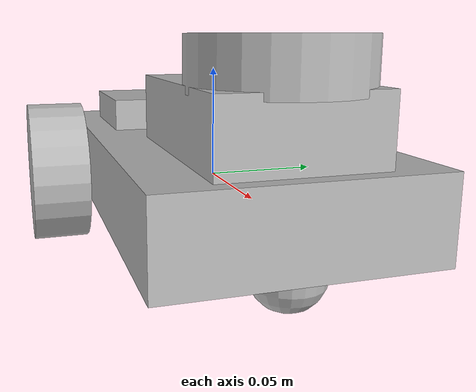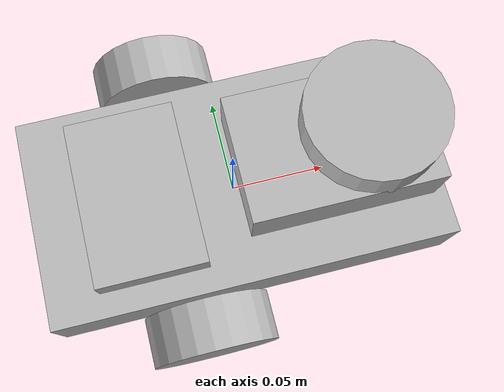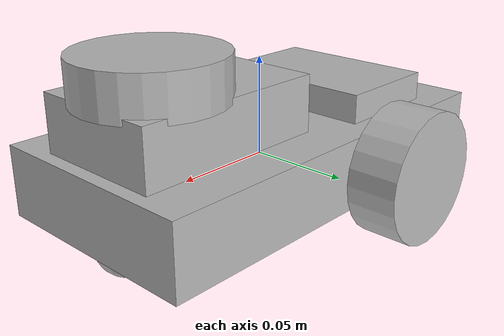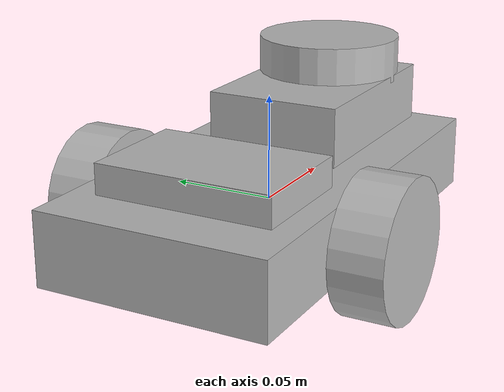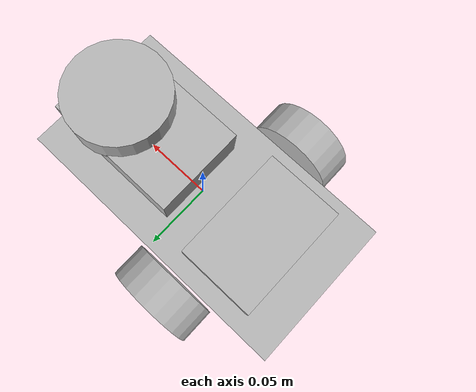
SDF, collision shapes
<?xml version='1.0'?>
<sdf version='1.5'>
  <model name='twd_lidar_robot'>
    <static>false</static>

    <link name='base_footprint'/>
    <pose>0 0 0 0 0 0</pose>

    <link name='base_link'>
      <collision name='base_link_collision'>
        <pose>0 0 0.002 0 0 0</pose>
        <geometry>
          <box>
            <size>.21 .11 .035</size>
          </box>
        </geometry>
      </collision>
      <visual name='base_link_visual'>
        <geometry>
          <mesh>
            <uri>model://lidar_robot_description/meshes/robot_base_link.dae</uri>
          </mesh>
        </geometry>
      </visual>

      <!-- Caster mount -->
      <collision name='caster_mount_collision'>
        <pose>0.086 0 0 0 0 0</pose>
        <geometry>
          <cylinder>
            <radius>0.017</radius>
            <length>0.0125</length>
          </cylinder>
        </geometry>
      </collision>
      <visual name='caster_mount_visual'>
        <pose>0.086 0 -0.035 0 0 0</pose>
        <geometry>
          <mesh>
            <uri>model://lidar_robot_description/meshes/caster_mount.dae</uri>
          </mesh>
        </geometry>
      </visual>

      <!-- Raspberry Pi 4 -->
      <collision name='rpi_4_collision'>
        <pose>-0.05 0 0.025 0 0 -1.5707</pose>
        <geometry>
          <box>
            <size>0.085 0.056 0.018</size>
          </box>
        </geometry>
      </collision>
      <visual name='rpi_4_visual'>
        <pose>-0.05 0 0.017 0 0 1.5707</pose>
        <geometry>
          <mesh>
            <uri>model://lidar_robot_description/meshes/rpi_4.dae</uri>
          </mesh>
        </geometry>
      </visual>

      <!-- Rplidar base -->
      <collision name='rplidar_base_collision'>
        <pose>0.05 0 0.03 0 0 0</pose>
        <geometry>
          <box>
            <size>0.0968 0.065 0.035</size>
          </box>
        </geometry>
      </collision>
      <visual name='rplidar_base_visual'>
      <pose>0.068 -0.001 0.0125 0 0 3.142</pose>
        <geometry>
          <mesh>
            <uri>model://lidar_robot_description/meshes/rplidar_base.dae</uri>
          </mesh>
        </geometry>
      </visual>
    </link>

    <!-- Imu Sensor -->
    <link name='imu_link'>
      <gravity>true</gravity>
      <sensor name='twd_robot_imu' type='imu'>
        <plugin name='twd_lidar_robot_imu' filename='libgazebo_ros_imu_sensor.so'>
          <initial_orientation_as_reference>false</initial_orientation_as_reference>
          <frame_name>imu_link</frame_name>
          <ros>
            <namespace>/imu</namespace>
            <remapping>~/out:=data</remapping>
          </ros>
        </plugin>
        <always_on>true</always_on>
        <update_rate>100</update_rate>
        <visualize>true</visualize>
        <imu>
          <orientation>
            <x>
              <noise type="gaussian">
                <mean>0.0</mean>
                <stddev>2e-3</stddev>
              </noise>
            </x>
            <y>
              <noise type="gaussian">
                <mean>0.0</mean>
                <stddev>2e-3</stddev>
              </noise>
            </y>
            <z>
              <noise type="gaussian">
                <mean>0.0</mean>
                <stddev>2e-3</stddev>
              </noise>
            </z>
          </orientation>
          <angular_velocity>
            <x>
              <noise type="gaussian">
                <mean>0.0</mean>
                <stddev>2e-4</stddev>
              </noise>
            </x>
            <y>
              <noise type="gaussian">
                <mean>0.0</mean>
                <stddev>2e-4</stddev>
              </noise>
            </y>
            <z>
              <noise type="gaussian">
                <mean>0.0</mean>
                <stddev>2e-4</stddev>
              </noise>
            </z>
          </angular_velocity>
          <linear_acceleration>
            <x>
              <noise type="gaussian">
                <mean>0.0</mean>
                <stddev>1.7e-2</stddev>
              </noise>
            </x>
            <y>
              <noise type="gaussian">
                <mean>0.0</mean>
                <stddev>1.7e-2</stddev>
              </noise>
            </y>
            <z>
              <noise type="gaussian">
                <mean>0.0</mean>
                <stddev>1.7e-2</stddev>
              </noise>
            </z>
          </linear_acceleration>
        </imu>
      </sensor>
    </link>

    <!-- Left wheel link  -->
    <link name='left_wheel'>
      <pose>-0.0288 0.055 0 0 1.5707 1.5707</pose>
      <inertial>
        <mass>0.031</mass>
        <inertia>
          <ixx>0.000013724</ixx>
          <iyy>0.000013724</iyy>
          <izz>0.000024219</izz>
          <ixy>0</ixy>
          <ixz>0</ixz>
          <iyz>0</iyz>
        </inertia>
      </inertial>
      <collision name='left_wheel_collision'>
        <pose>0 0 0.015 0 0 0</pose>
        <geometry>
          <cylinder>
            <radius>0.0325</radius>
            <length>0.025</length>
          </cylinder>
        </geometry>
      </collision>
      <visual name='left_wheel_visual'>
        <geometry>
          <mesh>
            <uri>model://lidar_robot_description/meshes/left_wheel.dae</uri>
          </mesh>
        </geometry>
      </visual>
    </link>

    <!-- Right robot wheel  -->
    <link name='right_wheel'>
      <pose>-0.0288 -0.064 0 0 1.5707 1.5707</pose>
      <inertial>
        <mass>0.031</mass>
        <inertia>
          <ixx>0.000013724</ixx>
          <iyy>0.000013724</iyy>
          <izz>0.000024219</izz>
          <ixy>0</ixy>
          <ixz>0</ixz>
          <iyz>0</iyz>
        </inertia>
      </inertial>
      <collision name='right_wheel_collision'>
        <pose>0 0 -0.007 0 0 0</pose>
        <geometry>
          <cylinder>
            <radius>0.0325</radius>
            <length>0.025</length>
          </cylinder>
        </geometry>
      </collision>
      <visual name='right_wheel_visual'>
        <geometry>
          <mesh>
            <uri>model://lidar_robot_description/meshes/right_wheel.dae</uri>
          </mesh>
        </geometry>
      </visual>
    </link>

    <!-- Caster wheel -->
    <link name='caster_wheel'>
      <pose>0.085 0 -0.0175 0 0 1.5707</pose>
      <collision name='caster_wheel_collision'>
        <geometry>
          <sphere>
            <radius>0.015</radius>
          </sphere>
        </geometry>
        <surface>
          <friction>
            <ode>
              <mu>0.5</mu>
              <mu2>0.5</mu2>
              <slip1>0.01</slip1>
              <slip2>0.01</slip2>
              <fdir1>0 0 1</fdir1>
            </ode>
          </friction>
        </surface>
      </collision>
      <visual name='caster_wheel_visual'>
        <pose>0 -0.007 0 0 0 0</pose>
        <geometry>
          <mesh>
            <uri>model://lidar_robot_description/meshes/caster_wheel.dae</uri>
          </mesh>
        </geometry>
      </visual>
    </link>

    <!-- Rplidar top link -->
    <link name='rplidar_top'>
      <pose>0.068 0.0027 0.045 0 0 1.0707</pose>
      <collision name='rplidar_top_collision'>
        <pose>0 -0.001 0.01 0 0 0</pose>
        <geometry>
          <cylinder>
            <radius>0.035</radius>
            <length>0.021</length>
          </cylinder>
        </geometry>
      </collision>
      <visual name='rplidar_top_visual'>
        <geometry>
          <mesh>
            <uri>model://lidar_robot_description/meshes/rplidar_top.dae</uri>
          </mesh>
        </geometry>
      </visual>

      <sensor type='ray' name='rplidar'>
        <pose>0 0 0.01 0 0 -0.7854</pose>
        <always_on>true</always_on>
        <visualize>true</visualize>
        <update_rate>5.5</update_rate>
        <ray>
          <scan>
            <horizontal>
              <samples>360</samples>
              <resolution>1</resolution>
              <min_angle>0</min_angle>
              <max_angle>6.28</max_angle>
            </horizontal>
          </scan>
          <range>
            <min>0.15</min>
            <max>12</max>
            <resolution>0.2</resolution>
          </range>
           <noise>
             <type>gaussian</type>
             <mean>0.0</mean>
             <stddev>0.01</stddev>
           </noise>
        </ray>
        <plugin name="scan" filename="libgazebo_ros_ray_sensor.so">
          <ros>
            <remapping>~/out:=scan</remapping>
          </ros>
          <output_type>sensor_msgs/LaserScan</output_type>
          <frame_name>rplidar_top</frame_name>
        </plugin>
      </sensor>
    </link>

    <!-- Joints  -->
    <joint name='base_joint' type='fixed'>
      <pose>0 0 0 0 0 0</pose>
      <parent>base_footprint</parent>
      <child>base_link</child>
    </joint>

    <joint name='imu_joint' type='fixed'>
      <pose>0 0 0 0 0 0</pose>
      <parent>base_link</parent>
      <child>imu_link</child>
    </joint>

    <joint name='left_wheel_hinge' type='revolute'>
      <pose>0 0 0 0 0 0</pose>
      <parent>base_link</parent>
      <child>left_wheel</child>
      <axis>
        <xyz>0 0 1</xyz>
      </axis>
    </joint>

    <joint name='right_wheel_hinge' type='revolute'>
      <pose>0 0 0 0 0 0</pose>
      <parent>base_link</parent>
      <child>right_wheel</child>
      <axis>
        <xyz>0 0 1</xyz>
      </axis>
    </joint>

    <joint name='caster_joint' type='revolute'>
      <pose>0 0 0 0 0 0</pose>
      <parent>base_link</parent>
      <child>caster_wheel</child>
      <axis>
        <xyz>0 0 1</xyz>
      </axis>
    </joint>

    <joint name='rplidar_joint' type='fixed'>
      <pose>0 0 0 0 0 0</pose>
      <parent>base_link</parent>
      <child>rplidar_top</child>
    </joint>

    <!-- Wheel Odometry -->
    <plugin name='twd_lidar_robot_diff_drive' filename='libgazebo_ros_diff_drive.so'>
      <update_rate>25</update_rate>
      <left_joint>left_wheel_hinge</left_joint>
      <right_joint>right_wheel_hinge</right_joint>
      <wheel_separation>0.138</wheel_separation>
      <wheel_diameter>0.065</wheel_diameter>
      <max_wheel_torque>15</max_wheel_torque>
      <max_wheel_acceleration>1.0</max_wheel_acceleration>
      <command_topic>cmd_vel</command_topic>
      <!-- Output. When false, publish no wheel odometry data to a ROS topic -->
      <publish_odom>true</publish_odom>
      <!-- When true, publish coordinate transform from odom to base_footprint -->
      <!-- Addison usually uses the robot_localization package to publish this transform -->
      <publish_odom_tf>false</publish_odom_tf>
      <!-- When true, publish coordinate transform from base_link to the wheels -->
      <!-- The robot_state_publisher package is often used to publish this transform -->
      <publish_wheel_tf>false</publish_wheel_tf>
      <!-- Topic to publish nav_msgs/Odometry messages, defaults to `odom` -->
      <odometry_topic>odom</odometry_topic>
      <!-- Odometry frame, defaults to `odom` -->
      <odometry_frame>odom</odometry_frame>
      <!-- Robot frame to calculate odometry from, defaults to `base_footprint` -->
      <robot_base_frame>base_footprint</robot_base_frame>
      <!-- Odometry source, 0 for ENCODER, 1 for WORLD, defaults to WORLD -->
      <odometry_source>1</odometry_source>
      <!-- Change the ROS topic we will publish the odometry data to -->
      <ros>
        <remapping>odom:=wheel/odometry</remapping>
      </ros>
    </plugin>

    <!-- Joint State Publisher -->
    <plugin name="twd_lidar_robot_joint_state" filename="libgazebo_ros_joint_state_publisher.so">
      <ros>
        <remapping>~/out:=joint_states</remapping>
      </ros>
      <update_rate>25</update_rate>
      <joint_name>left_wheel_hinge</joint_name>
      <joint_name>right_wheel_hinge</joint_name>
    </plugin>
  </model>
</sdf>
